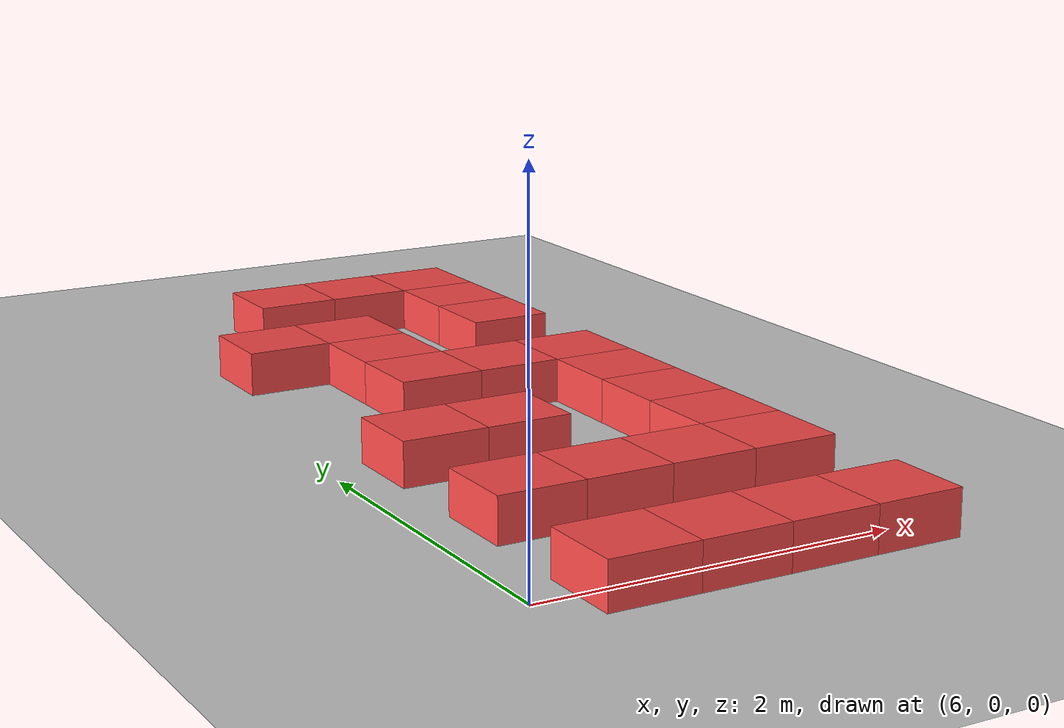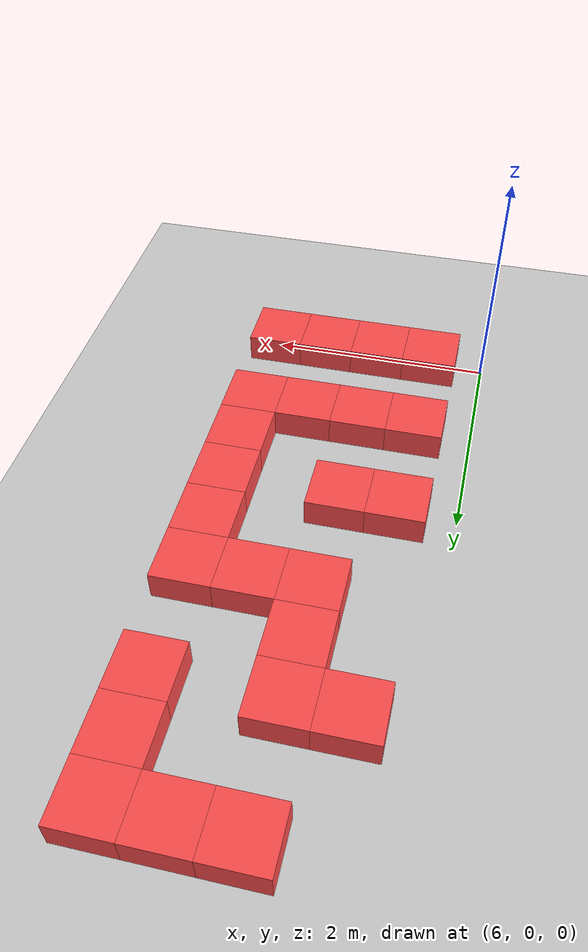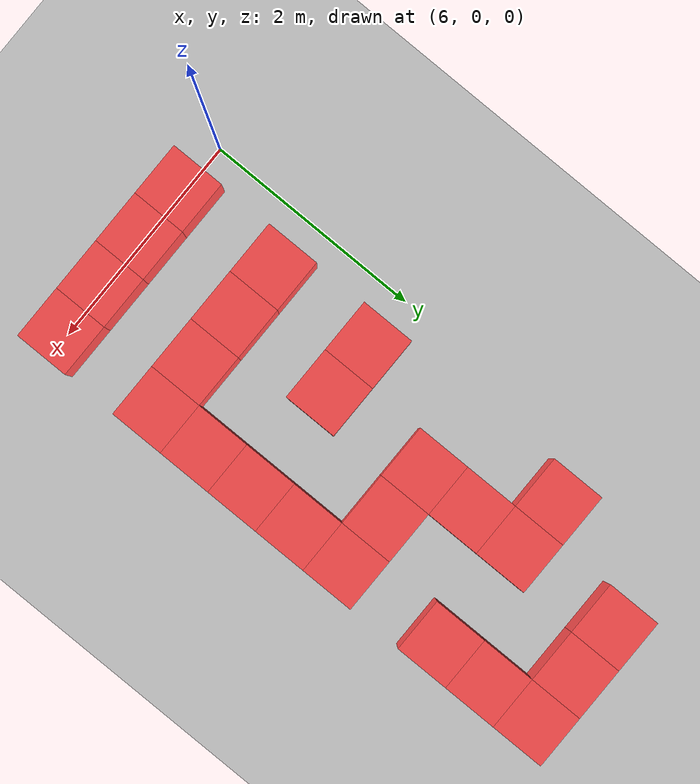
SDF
<sdf version="1.6">
 <world name="default">
  <model name="ground_plane">
   <static>1</static>
   <link name="link">
    <collision name="collision">
     <geometry><plane><normal>0 0 1</normal><size>100 100</size></plane></geometry>
     <surface><friction><ode><mu>100</mu><mu2>50</mu2></ode></friction></surface>
    </collision>
    <visual name="visual">
     <cast_shadows>0</cast_shadows>
     <geometry><plane><normal>0 0 1</normal><size>100 100</size></plane></geometry>
     <material>
      <script><uri>file://media/materials/scripts/gazebo.material</uri><name>Gazebo/Grey</name></script>
     </material>
    </visual>
   </link>
  </model>
  <model name="Box_Red_325">
   <link name="link_0">
    <inertial>
     <mass>1</mass>
     <inertia>
      <ixx>0.166667</ixx>
      <ixy>0</ixy>
      <ixz>0</ixz>
      <iyy>0.166667</iyy>
      <iyz>0</iyz>
      <izz>0.166667</izz>
     </inertia>
    </inertial>
    <visual name="visual">
     <geometry><box><size>0.5 0.5 0.5</size></box></geometry>
     <material>
      <lighting>1</lighting>
      <script><uri>file://media/materials/scripts/gazebo.material</uri><name>Gazebo/Grey</name></script>
      <ambient>1 0.3 0.3 1</ambient>
      <diffuse>0.7 0.7 0.7 1</diffuse>
      <specular>0.01 0.01 0.01 1</specular>
      <emissive>0 0 0 1</emissive>
      <shader type="vertex"><normal_map>__default__</normal_map></shader>
     </material>
    </visual>
    <collision name="collision">
     <geometry><box><size>0.5 0.5 0.5</size></box></geometry>
     <surface>
      <friction>
       <ode><mu>1</mu><mu2>1</mu2><fdir1>0 0 0</fdir1><slip1>0</slip1><slip2>0</slip2></ode>
       <torsional>
        <coefficient>1</coefficient>
        <patch_radius>0</patch_radius>
        <surface_radius>0</surface_radius>
        <use_patch_radius>1</use_patch_radius>
        <ode><slip>0</slip></ode>
       </torsional>
      </friction>
      <bounce><restitution_coefficient>0</restitution_coefficient><threshold>1e+06</threshold></bounce>
      <contact>
       <collide_without_contact>0</collide_without_contact>
       <collide_without_contact_bitmask>1</collide_without_contact_bitmask>
       <collide_bitmask>1</collide_bitmask>
       <ode>
        <soft_cfm>0</soft_cfm>
        <soft_erp>0.2</soft_erp>
        <kp>1e+13</kp>
        <kd>1</kd>
        <max_vel>0.01</max_vel>
        <min_depth>0</min_depth>
       </ode>
       <bullet>
        <split_impulse>1</split_impulse>
        <split_impulse_penetration_threshold>-0.01</split_impulse_penetration_threshold>
        <soft_cfm>0</soft_cfm>
        <soft_erp>0.2</soft_erp>
        <kp>1e+13</kp>
        <kd>1</kd>
       </bullet>
      </contact>
     </surface>
    </collision>
   </link>
   <static>0</static>
   <pose>6.500 0.000 0.000 0 0 0</pose>
  </model>
  <model name="Box_Red_327">
   <link name="link_0">
    <inertial>
     <mass>1</mass>
     <inertia>
      <ixx>0.166667</ixx>
      <ixy>0</ixy>
      <ixz>0</ixz>
      <iyy>0.166667</iyy>
      <iyz>0</iyz>
      <izz>0.166667</izz>
     </inertia>
    </inertial>
    <visual name="visual">
     <geometry><box><size>0.5 0.5 0.5</size></box></geometry>
     <material>
      <lighting>1</lighting>
      <script><uri>file://media/materials/scripts/gazebo.material</uri><name>Gazebo/Grey</name></script>
      <ambient>1 0.3 0.3 1</ambient>
      <diffuse>0.7 0.7 0.7 1</diffuse>
      <specular>0.01 0.01 0.01 1</specular>
      <emissive>0 0 0 1</emissive>
      <shader type="vertex"><normal_map>__default__</normal_map></shader>
     </material>
    </visual>
    <collision name="collision">
     <geometry><box><size>0.5 0.5 0.5</size></box></geometry>
     <surface>
      <friction>
       <ode><mu>1</mu><mu2>1</mu2><fdir1>0 0 0</fdir1><slip1>0</slip1><slip2>0</slip2></ode>
       <torsional>
        <coefficient>1</coefficient>
        <patch_radius>0</patch_radius>
        <surface_radius>0</surface_radius>
        <use_patch_radius>1</use_patch_radius>
        <ode><slip>0</slip></ode>
       </torsional>
      </friction>
      <bounce><restitution_coefficient>0</restitution_coefficient><threshold>1e+06</threshold></bounce>
      <contact>
       <collide_without_contact>0</collide_without_contact>
       <collide_without_contact_bitmask>1</collide_without_contact_bitmask>
       <collide_bitmask>1</collide_bitmask>
       <ode>
        <soft_cfm>0</soft_cfm>
        <soft_erp>0.2</soft_erp>
        <kp>1e+13</kp>
        <kd>1</kd>
        <max_vel>0.01</max_vel>
        <min_depth>0</min_depth>
       </ode>
       <bullet>
        <split_impulse>1</split_impulse>
        <split_impulse_penetration_threshold>-0.01</split_impulse_penetration_threshold>
        <soft_cfm>0</soft_cfm>
        <soft_erp>0.2</soft_erp>
        <kp>1e+13</kp>
        <kd>1</kd>
       </bullet>
      </contact>
     </surface>
    </collision>
   </link>
   <static>0</static>
   <pose>6.500 1.000 0.000 0 0 0</pose>
  </model>
  <model name="Box_Red_329">
   <link name="link_0">
    <inertial>
     <mass>1</mass>
     <inertia>
      <ixx>0.166667</ixx>
      <ixy>0</ixy>
      <ixz>0</ixz>
      <iyy>0.166667</iyy>
      <iyz>0</iyz>
      <izz>0.166667</izz>
     </inertia>
    </inertial>
    <visual name="visual">
     <geometry><box><size>0.5 0.5 0.5</size></box></geometry>
     <material>
      <lighting>1</lighting>
      <script><uri>file://media/materials/scripts/gazebo.material</uri><name>Gazebo/Grey</name></script>
      <ambient>1 0.3 0.3 1</ambient>
      <diffuse>0.7 0.7 0.7 1</diffuse>
      <specular>0.01 0.01 0.01 1</specular>
      <emissive>0 0 0 1</emissive>
      <shader type="vertex"><normal_map>__default__</normal_map></shader>
     </material>
    </visual>
    <collision name="collision">
     <geometry><box><size>0.5 0.5 0.5</size></box></geometry>
     <surface>
      <friction>
       <ode><mu>1</mu><mu2>1</mu2><fdir1>0 0 0</fdir1><slip1>0</slip1><slip2>0</slip2></ode>
       <torsional>
        <coefficient>1</coefficient>
        <patch_radius>0</patch_radius>
        <surface_radius>0</surface_radius>
        <use_patch_radius>1</use_patch_radius>
        <ode><slip>0</slip></ode>
       </torsional>
      </friction>
      <bounce><restitution_coefficient>0</restitution_coefficient><threshold>1e+06</threshold></bounce>
      <contact>
       <collide_without_contact>0</collide_without_contact>
       <collide_without_contact_bitmask>1</collide_without_contact_bitmask>
       <collide_bitmask>1</collide_bitmask>
       <ode>
        <soft_cfm>0</soft_cfm>
        <soft_erp>0.2</soft_erp>
        <kp>1e+13</kp>
        <kd>1</kd>
        <max_vel>0.01</max_vel>
        <min_depth>0</min_depth>
       </ode>
       <bullet>
        <split_impulse>1</split_impulse>
        <split_impulse_penetration_threshold>-0.01</split_impulse_penetration_threshold>
        <soft_cfm>0</soft_cfm>
        <soft_erp>0.2</soft_erp>
        <kp>1e+13</kp>
        <kd>1</kd>
       </bullet>
      </contact>
     </surface>
    </collision>
   </link>
   <static>0</static>
   <pose>6.500 2.000 0.000 0 0 0</pose>
  </model>
  <model name="Box_Red_333">
   <link name="link_0">
    <inertial>
     <mass>1</mass>
     <inertia>
      <ixx>0.166667</ixx>
      <ixy>0</ixy>
      <ixz>0</ixz>
      <iyy>0.166667</iyy>
      <iyz>0</iyz>
      <izz>0.166667</izz>
     </inertia>
    </inertial>
    <visual name="visual">
     <geometry><box><size>0.5 0.5 0.5</size></box></geometry>
     <material>
      <lighting>1</lighting>
      <script><uri>file://media/materials/scripts/gazebo.material</uri><name>Gazebo/Grey</name></script>
      <ambient>1 0.3 0.3 1</ambient>
      <diffuse>0.7 0.7 0.7 1</diffuse>
      <specular>0.01 0.01 0.01 1</specular>
      <emissive>0 0 0 1</emissive>
      <shader type="vertex"><normal_map>__default__</normal_map></shader>
     </material>
    </visual>
    <collision name="collision">
     <geometry><box><size>0.5 0.5 0.5</size></box></geometry>
     <surface>
      <friction>
       <ode><mu>1</mu><mu2>1</mu2><fdir1>0 0 0</fdir1><slip1>0</slip1><slip2>0</slip2></ode>
       <torsional>
        <coefficient>1</coefficient>
        <patch_radius>0</patch_radius>
        <surface_radius>0</surface_radius>
        <use_patch_radius>1</use_patch_radius>
        <ode><slip>0</slip></ode>
       </torsional>
      </friction>
      <bounce><restitution_coefficient>0</restitution_coefficient><threshold>1e+06</threshold></bounce>
      <contact>
       <collide_without_contact>0</collide_without_contact>
       <collide_without_contact_bitmask>1</collide_without_contact_bitmask>
       <collide_bitmask>1</collide_bitmask>
       <ode>
        <soft_cfm>0</soft_cfm>
        <soft_erp>0.2</soft_erp>
        <kp>1e+13</kp>
        <kd>1</kd>
        <max_vel>0.01</max_vel>
        <min_depth>0</min_depth>
       </ode>
       <bullet>
        <split_impulse>1</split_impulse>
        <split_impulse_penetration_threshold>-0.01</split_impulse_penetration_threshold>
        <soft_cfm>0</soft_cfm>
        <soft_erp>0.2</soft_erp>
        <kp>1e+13</kp>
        <kd>1</kd>
       </bullet>
      </contact>
     </surface>
    </collision>
   </link>
   <static>0</static>
   <pose>6.500 4.000 0.000 0 0 0</pose>
  </model>
  <model name="Box_Red_350">
   <link name="link_0">
    <inertial>
     <mass>1</mass>
     <inertia>
      <ixx>0.166667</ixx>
      <ixy>0</ixy>
      <ixz>0</ixz>
      <iyy>0.166667</iyy>
      <iyz>0</iyz>
      <izz>0.166667</izz>
     </inertia>
    </inertial>
    <visual name="visual">
     <geometry><box><size>0.5 0.5 0.5</size></box></geometry>
     <material>
      <lighting>1</lighting>
      <script><uri>file://media/materials/scripts/gazebo.material</uri><name>Gazebo/Grey</name></script>
      <ambient>1 0.3 0.3 1</ambient>
      <diffuse>0.7 0.7 0.7 1</diffuse>
      <specular>0.01 0.01 0.01 1</specular>
      <emissive>0 0 0 1</emissive>
      <shader type="vertex"><normal_map>__default__</normal_map></shader>
     </material>
    </visual>
    <collision name="collision">
     <geometry><box><size>0.5 0.5 0.5</size></box></geometry>
     <surface>
      <friction>
       <ode><mu>1</mu><mu2>1</mu2><fdir1>0 0 0</fdir1><slip1>0</slip1><slip2>0</slip2></ode>
       <torsional>
        <coefficient>1</coefficient>
        <patch_radius>0</patch_radius>
        <surface_radius>0</surface_radius>
        <use_patch_radius>1</use_patch_radius>
        <ode><slip>0</slip></ode>
       </torsional>
      </friction>
      <bounce><restitution_coefficient>0</restitution_coefficient><threshold>1e+06</threshold></bounce>
      <contact>
       <collide_without_contact>0</collide_without_contact>
       <collide_without_contact_bitmask>1</collide_without_contact_bitmask>
       <collide_bitmask>1</collide_bitmask>
       <ode>
        <soft_cfm>0</soft_cfm>
        <soft_erp>0.2</soft_erp>
        <kp>1e+13</kp>
        <kd>1</kd>
        <max_vel>0.01</max_vel>
        <min_depth>0</min_depth>
       </ode>
       <bullet>
        <split_impulse>1</split_impulse>
        <split_impulse_penetration_threshold>-0.01</split_impulse_penetration_threshold>
        <soft_cfm>0</soft_cfm>
        <soft_erp>0.2</soft_erp>
        <kp>1e+13</kp>
        <kd>1</kd>
       </bullet>
      </contact>
     </surface>
    </collision>
   </link>
   <static>0</static>
   <pose>7.000 0.000 0.000 0 0 0</pose>
  </model>
  <model name="Box_Red_352">
   <link name="link_0">
    <inertial>
     <mass>1</mass>
     <inertia>
      <ixx>0.166667</ixx>
      <ixy>0</ixy>
      <ixz>0</ixz>
      <iyy>0.166667</iyy>
      <iyz>0</iyz>
      <izz>0.166667</izz>
     </inertia>
    </inertial>
    <visual name="visual">
     <geometry><box><size>0.5 0.5 0.5</size></box></geometry>
     <material>
      <lighting>1</lighting>
      <script><uri>file://media/materials/scripts/gazebo.material</uri><name>Gazebo/Grey</name></script>
      <ambient>1 0.3 0.3 1</ambient>
      <diffuse>0.7 0.7 0.7 1</diffuse>
      <specular>0.01 0.01 0.01 1</specular>
      <emissive>0 0 0 1</emissive>
      <shader type="vertex"><normal_map>__default__</normal_map></shader>
     </material>
    </visual>
    <collision name="collision">
     <geometry><box><size>0.5 0.5 0.5</size></box></geometry>
     <surface>
      <friction>
       <ode><mu>1</mu><mu2>1</mu2><fdir1>0 0 0</fdir1><slip1>0</slip1><slip2>0</slip2></ode>
       <torsional>
        <coefficient>1</coefficient>
        <patch_radius>0</patch_radius>
        <surface_radius>0</surface_radius>
        <use_patch_radius>1</use_patch_radius>
        <ode><slip>0</slip></ode>
       </torsional>
      </friction>
      <bounce><restitution_coefficient>0</restitution_coefficient><threshold>1e+06</threshold></bounce>
      <contact>
       <collide_without_contact>0</collide_without_contact>
       <collide_without_contact_bitmask>1</collide_without_contact_bitmask>
       <collide_bitmask>1</collide_bitmask>
       <ode>
        <soft_cfm>0</soft_cfm>
        <soft_erp>0.2</soft_erp>
        <kp>1e+13</kp>
        <kd>1</kd>
        <max_vel>0.01</max_vel>
        <min_depth>0</min_depth>
       </ode>
       <bullet>
        <split_impulse>1</split_impulse>
        <split_impulse_penetration_threshold>-0.01</split_impulse_penetration_threshold>
        <soft_cfm>0</soft_cfm>
        <soft_erp>0.2</soft_erp>
        <kp>1e+13</kp>
        <kd>1</kd>
       </bullet>
      </contact>
     </surface>
    </collision>
   </link>
   <static>0</static>
   <pose>7.000 1.000 0.000 0 0 0</pose>
  </model>
  <model name="Box_Red_354">
   <link name="link_0">
    <inertial>
     <mass>1</mass>
     <inertia>
      <ixx>0.166667</ixx>
      <ixy>0</ixy>
      <ixz>0</ixz>
      <iyy>0.166667</iyy>
      <iyz>0</iyz>
      <izz>0.166667</izz>
     </inertia>
    </inertial>
    <visual name="visual">
     <geometry><box><size>0.5 0.5 0.5</size></box></geometry>
     <material>
      <lighting>1</lighting>
      <script><uri>file://media/materials/scripts/gazebo.material</uri><name>Gazebo/Grey</name></script>
      <ambient>1 0.3 0.3 1</ambient>
      <diffuse>0.7 0.7 0.7 1</diffuse>
      <specular>0.01 0.01 0.01 1</specular>
      <emissive>0 0 0 1</emissive>
      <shader type="vertex"><normal_map>__default__</normal_map></shader>
     </material>
    </visual>
    <collision name="collision">
     <geometry><box><size>0.5 0.5 0.5</size></box></geometry>
     <surface>
      <friction>
       <ode><mu>1</mu><mu2>1</mu2><fdir1>0 0 0</fdir1><slip1>0</slip1><slip2>0</slip2></ode>
       <torsional>
        <coefficient>1</coefficient>
        <patch_radius>0</patch_radius>
        <surface_radius>0</surface_radius>
        <use_patch_radius>1</use_patch_radius>
        <ode><slip>0</slip></ode>
       </torsional>
      </friction>
      <bounce><restitution_coefficient>0</restitution_coefficient><threshold>1e+06</threshold></bounce>
      <contact>
       <collide_without_contact>0</collide_without_contact>
       <collide_without_contact_bitmask>1</collide_without_contact_bitmask>
       <collide_bitmask>1</collide_bitmask>
       <ode>
        <soft_cfm>0</soft_cfm>
        <soft_erp>0.2</soft_erp>
        <kp>1e+13</kp>
        <kd>1</kd>
        <max_vel>0.01</max_vel>
        <min_depth>0</min_depth>
       </ode>
       <bullet>
        <split_impulse>1</split_impulse>
        <split_impulse_penetration_threshold>-0.01</split_impulse_penetration_threshold>
        <soft_cfm>0</soft_cfm>
        <soft_erp>0.2</soft_erp>
        <kp>1e+13</kp>
        <kd>1</kd>
       </bullet>
      </contact>
     </surface>
    </collision>
   </link>
   <static>0</static>
   <pose>7.000 2.000 0.000 0 0 0</pose>
  </model>
  <model name="Box_Red_356">
   <link name="link_0">
    <inertial>
     <mass>1</mass>
     <inertia>
      <ixx>0.166667</ixx>
      <ixy>0</ixy>
      <ixz>0</ixz>
      <iyy>0.166667</iyy>
      <iyz>0</iyz>
      <izz>0.166667</izz>
     </inertia>
    </inertial>
    <visual name="visual">
     <geometry><box><size>0.5 0.5 0.5</size></box></geometry>
     <material>
      <lighting>1</lighting>
      <script><uri>file://media/materials/scripts/gazebo.material</uri><name>Gazebo/Grey</name></script>
      <ambient>1 0.3 0.3 1</ambient>
      <diffuse>0.7 0.7 0.7 1</diffuse>
      <specular>0.01 0.01 0.01 1</specular>
      <emissive>0 0 0 1</emissive>
      <shader type="vertex"><normal_map>__default__</normal_map></shader>
     </material>
    </visual>
    <collision name="collision">
     <geometry><box><size>0.5 0.5 0.5</size></box></geometry>
     <surface>
      <friction>
       <ode><mu>1</mu><mu2>1</mu2><fdir1>0 0 0</fdir1><slip1>0</slip1><slip2>0</slip2></ode>
       <torsional>
        <coefficient>1</coefficient>
        <patch_radius>0</patch_radius>
        <surface_radius>0</surface_radius>
        <use_patch_radius>1</use_patch_radius>
        <ode><slip>0</slip></ode>
       </torsional>
      </friction>
      <bounce><restitution_coefficient>0</restitution_coefficient><threshold>1e+06</threshold></bounce>
      <contact>
       <collide_without_contact>0</collide_without_contact>
       <collide_without_contact_bitmask>1</collide_without_contact_bitmask>
       <collide_bitmask>1</collide_bitmask>
       <ode>
        <soft_cfm>0</soft_cfm>
        <soft_erp>0.2</soft_erp>
        <kp>1e+13</kp>
        <kd>1</kd>
        <max_vel>0.01</max_vel>
        <min_depth>0</min_depth>
       </ode>
       <bullet>
        <split_impulse>1</split_impulse>
        <split_impulse_penetration_threshold>-0.01</split_impulse_penetration_threshold>
        <soft_cfm>0</soft_cfm>
        <soft_erp>0.2</soft_erp>
        <kp>1e+13</kp>
        <kd>1</kd>
       </bullet>
      </contact>
     </surface>
    </collision>
   </link>
   <static>0</static>
   <pose>7.000 3.000 0.000 0 0 0</pose>
  </model>
  <model name="Box_Red_357">
   <link name="link_0">
    <inertial>
     <mass>1</mass>
     <inertia>
      <ixx>0.166667</ixx>
      <ixy>0</ixy>
      <ixz>0</ixz>
      <iyy>0.166667</iyy>
      <iyz>0</iyz>
      <izz>0.166667</izz>
     </inertia>
    </inertial>
    <visual name="visual">
     <geometry><box><size>0.5 0.5 0.5</size></box></geometry>
     <material>
      <lighting>1</lighting>
      <script><uri>file://media/materials/scripts/gazebo.material</uri><name>Gazebo/Grey</name></script>
      <ambient>1 0.3 0.3 1</ambient>
      <diffuse>0.7 0.7 0.7 1</diffuse>
      <specular>0.01 0.01 0.01 1</specular>
      <emissive>0 0 0 1</emissive>
      <shader type="vertex"><normal_map>__default__</normal_map></shader>
     </material>
    </visual>
    <collision name="collision">
     <geometry><box><size>0.5 0.5 0.5</size></box></geometry>
     <surface>
      <friction>
       <ode><mu>1</mu><mu2>1</mu2><fdir1>0 0 0</fdir1><slip1>0</slip1><slip2>0</slip2></ode>
       <torsional>
        <coefficient>1</coefficient>
        <patch_radius>0</patch_radius>
        <surface_radius>0</surface_radius>
        <use_patch_radius>1</use_patch_radius>
        <ode><slip>0</slip></ode>
       </torsional>
      </friction>
      <bounce><restitution_coefficient>0</restitution_coefficient><threshold>1e+06</threshold></bounce>
      <contact>
       <collide_without_contact>0</collide_without_contact>
       <collide_without_contact_bitmask>1</collide_without_contact_bitmask>
       <collide_bitmask>1</collide_bitmask>
       <ode>
        <soft_cfm>0</soft_cfm>
        <soft_erp>0.2</soft_erp>
        <kp>1e+13</kp>
        <kd>1</kd>
        <max_vel>0.01</max_vel>
        <min_depth>0</min_depth>
       </ode>
       <bullet>
        <split_impulse>1</split_impulse>
        <split_impulse_penetration_threshold>-0.01</split_impulse_penetration_threshold>
        <soft_cfm>0</soft_cfm>
        <soft_erp>0.2</soft_erp>
        <kp>1e+13</kp>
        <kd>1</kd>
       </bullet>
      </contact>
     </surface>
    </collision>
   </link>
   <static>0</static>
   <pose>7.000 3.500 0.000 0 0 0</pose>
  </model>
  <model name="Box_Red_358">
   <link name="link_0">
    <inertial>
     <mass>1</mass>
     <inertia>
      <ixx>0.166667</ixx>
      <ixy>0</ixy>
      <ixz>0</ixz>
      <iyy>0.166667</iyy>
      <iyz>0</iyz>
      <izz>0.166667</izz>
     </inertia>
    </inertial>
    <visual name="visual">
     <geometry><box><size>0.5 0.5 0.5</size></box></geometry>
     <material>
      <lighting>1</lighting>
      <script><uri>file://media/materials/scripts/gazebo.material</uri><name>Gazebo/Grey</name></script>
      <ambient>1 0.3 0.3 1</ambient>
      <diffuse>0.7 0.7 0.7 1</diffuse>
      <specular>0.01 0.01 0.01 1</specular>
      <emissive>0 0 0 1</emissive>
      <shader type="vertex"><normal_map>__default__</normal_map></shader>
     </material>
    </visual>
    <collision name="collision">
     <geometry><box><size>0.5 0.5 0.5</size></box></geometry>
     <surface>
      <friction>
       <ode><mu>1</mu><mu2>1</mu2><fdir1>0 0 0</fdir1><slip1>0</slip1><slip2>0</slip2></ode>
       <torsional>
        <coefficient>1</coefficient>
        <patch_radius>0</patch_radius>
        <surface_radius>0</surface_radius>
        <use_patch_radius>1</use_patch_radius>
        <ode><slip>0</slip></ode>
       </torsional>
      </friction>
      <bounce><restitution_coefficient>0</restitution_coefficient><threshold>1e+06</threshold></bounce>
      <contact>
       <collide_without_contact>0</collide_without_contact>
       <collide_without_contact_bitmask>1</collide_without_contact_bitmask>
       <collide_bitmask>1</collide_bitmask>
       <ode>
        <soft_cfm>0</soft_cfm>
        <soft_erp>0.2</soft_erp>
        <kp>1e+13</kp>
        <kd>1</kd>
        <max_vel>0.01</max_vel>
        <min_depth>0</min_depth>
       </ode>
       <bullet>
        <split_impulse>1</split_impulse>
        <split_impulse_penetration_threshold>-0.01</split_impulse_penetration_threshold>
        <soft_cfm>0</soft_cfm>
        <soft_erp>0.2</soft_erp>
        <kp>1e+13</kp>
        <kd>1</kd>
       </bullet>
      </contact>
     </surface>
    </collision>
   </link>
   <static>0</static>
   <pose>7.000 4.000 0.000 0 0 0</pose>
  </model>
  <model name="Box_Red_360">
   <link name="link_0">
    <inertial>
     <mass>1</mass>
     <inertia>
      <ixx>0.166667</ixx>
      <ixy>0</ixy>
      <ixz>0</ixz>
      <iyy>0.166667</iyy>
      <iyz>0</iyz>
      <izz>0.166667</izz>
     </inertia>
    </inertial>
    <visual name="visual">
     <geometry><box><size>0.5 0.5 0.5</size></box></geometry>
     <material>
      <lighting>1</lighting>
      <script><uri>file://media/materials/scripts/gazebo.material</uri><name>Gazebo/Grey</name></script>
      <ambient>1 0.3 0.3 1</ambient>
      <diffuse>0.7 0.7 0.7 1</diffuse>
      <specular>0.01 0.01 0.01 1</specular>
      <emissive>0 0 0 1</emissive>
      <shader type="vertex"><normal_map>__default__</normal_map></shader>
     </material>
    </visual>
    <collision name="collision">
     <geometry><box><size>0.5 0.5 0.5</size></box></geometry>
     <surface>
      <friction>
       <ode><mu>1</mu><mu2>1</mu2><fdir1>0 0 0</fdir1><slip1>0</slip1><slip2>0</slip2></ode>
       <torsional>
        <coefficient>1</coefficient>
        <patch_radius>0</patch_radius>
        <surface_radius>0</surface_radius>
        <use_patch_radius>1</use_patch_radius>
        <ode><slip>0</slip></ode>
       </torsional>
      </friction>
      <bounce><restitution_coefficient>0</restitution_coefficient><threshold>1e+06</threshold></bounce>
      <contact>
       <collide_without_contact>0</collide_without_contact>
       <collide_without_contact_bitmask>1</collide_without_contact_bitmask>
       <collide_bitmask>1</collide_bitmask>
       <ode>
        <soft_cfm>0</soft_cfm>
        <soft_erp>0.2</soft_erp>
        <kp>1e+13</kp>
        <kd>1</kd>
        <max_vel>0.01</max_vel>
        <min_depth>0</min_depth>
       </ode>
       <bullet>
        <split_impulse>1</split_impulse>
        <split_impulse_penetration_threshold>-0.01</split_impulse_penetration_threshold>
        <soft_cfm>0</soft_cfm>
        <soft_erp>0.2</soft_erp>
        <kp>1e+13</kp>
        <kd>1</kd>
       </bullet>
      </contact>
     </surface>
    </collision>
   </link>
   <static>0</static>
   <pose>7.000 5.000 0.000 0 0 0</pose>
  </model>
  <model name="Box_Red_375">
   <link name="link_0">
    <inertial>
     <mass>1</mass>
     <inertia>
      <ixx>0.166667</ixx>
      <ixy>0</ixy>
      <ixz>0</ixz>
      <iyy>0.166667</iyy>
      <iyz>0</iyz>
      <izz>0.166667</izz>
     </inertia>
    </inertial>
    <visual name="visual">
     <geometry><box><size>0.5 0.5 0.5</size></box></geometry>
     <material>
      <lighting>1</lighting>
      <script><uri>file://media/materials/scripts/gazebo.material</uri><name>Gazebo/Grey</name></script>
      <ambient>1 0.3 0.3 1</ambient>
      <diffuse>0.7 0.7 0.7 1</diffuse>
      <specular>0.01 0.01 0.01 1</specular>
      <emissive>0 0 0 1</emissive>
      <shader type="vertex"><normal_map>__default__</normal_map></shader>
     </material>
    </visual>
    <collision name="collision">
     <geometry><box><size>0.5 0.5 0.5</size></box></geometry>
     <surface>
      <friction>
       <ode><mu>1</mu><mu2>1</mu2><fdir1>0 0 0</fdir1><slip1>0</slip1><slip2>0</slip2></ode>
       <torsional>
        <coefficient>1</coefficient>
        <patch_radius>0</patch_radius>
        <surface_radius>0</surface_radius>
        <use_patch_radius>1</use_patch_radius>
        <ode><slip>0</slip></ode>
       </torsional>
      </friction>
      <bounce><restitution_coefficient>0</restitution_coefficient><threshold>1e+06</threshold></bounce>
      <contact>
       <collide_without_contact>0</collide_without_contact>
       <collide_without_contact_bitmask>1</collide_without_contact_bitmask>
       <collide_bitmask>1</collide_bitmask>
       <ode>
        <soft_cfm>0</soft_cfm>
        <soft_erp>0.2</soft_erp>
        <kp>1e+13</kp>
        <kd>1</kd>
        <max_vel>0.01</max_vel>
        <min_depth>0</min_depth>
       </ode>
       <bullet>
        <split_impulse>1</split_impulse>
        <split_impulse_penetration_threshold>-0.01</split_impulse_penetration_threshold>
        <soft_cfm>0</soft_cfm>
        <soft_erp>0.2</soft_erp>
        <kp>1e+13</kp>
        <kd>1</kd>
       </bullet>
      </contact>
     </surface>
    </collision>
   </link>
   <static>0</static>
   <pose>7.500 0.000 0.000 0 0 0</pose>
  </model>
  <model name="Box_Red_377">
   <link name="link_0">
    <inertial>
     <mass>1</mass>
     <inertia>
      <ixx>0.166667</ixx>
      <ixy>0</ixy>
      <ixz>0</ixz>
      <iyy>0.166667</iyy>
      <iyz>0</iyz>
      <izz>0.166667</izz>
     </inertia>
    </inertial>
    <visual name="visual">
     <geometry><box><size>0.5 0.5 0.5</size></box></geometry>
     <material>
      <lighting>1</lighting>
      <script><uri>file://media/materials/scripts/gazebo.material</uri><name>Gazebo/Grey</name></script>
      <ambient>1 0.3 0.3 1</ambient>
      <diffuse>0.7 0.7 0.7 1</diffuse>
      <specular>0.01 0.01 0.01 1</specular>
      <emissive>0 0 0 1</emissive>
      <shader type="vertex"><normal_map>__default__</normal_map></shader>
     </material>
    </visual>
    <collision name="collision">
     <geometry><box><size>0.5 0.5 0.5</size></box></geometry>
     <surface>
      <friction>
       <ode><mu>1</mu><mu2>1</mu2><fdir1>0 0 0</fdir1><slip1>0</slip1><slip2>0</slip2></ode>
       <torsional>
        <coefficient>1</coefficient>
        <patch_radius>0</patch_radius>
        <surface_radius>0</surface_radius>
        <use_patch_radius>1</use_patch_radius>
        <ode><slip>0</slip></ode>
       </torsional>
      </friction>
      <bounce><restitution_coefficient>0</restitution_coefficient><threshold>1e+06</threshold></bounce>
      <contact>
       <collide_without_contact>0</collide_without_contact>
       <collide_without_contact_bitmask>1</collide_without_contact_bitmask>
       <collide_bitmask>1</collide_bitmask>
       <ode>
        <soft_cfm>0</soft_cfm>
        <soft_erp>0.2</soft_erp>
        <kp>1e+13</kp>
        <kd>1</kd>
        <max_vel>0.01</max_vel>
        <min_depth>0</min_depth>
       </ode>
       <bullet>
        <split_impulse>1</split_impulse>
        <split_impulse_penetration_threshold>-0.01</split_impulse_penetration_threshold>
        <soft_cfm>0</soft_cfm>
        <soft_erp>0.2</soft_erp>
        <kp>1e+13</kp>
        <kd>1</kd>
       </bullet>
      </contact>
     </surface>
    </collision>
   </link>
   <static>0</static>
   <pose>7.500 1.000 0.000 0 0 0</pose>
  </model>
  <model name="Box_Red_381">
   <link name="link_0">
    <inertial>
     <mass>1</mass>
     <inertia>
      <ixx>0.166667</ixx>
      <ixy>0</ixy>
      <ixz>0</ixz>
      <iyy>0.166667</iyy>
      <iyz>0</iyz>
      <izz>0.166667</izz>
     </inertia>
    </inertial>
    <visual name="visual">
     <geometry><box><size>0.5 0.5 0.5</size></box></geometry>
     <material>
      <lighting>1</lighting>
      <script><uri>file://media/materials/scripts/gazebo.material</uri><name>Gazebo/Grey</name></script>
      <ambient>1 0.3 0.3 1</ambient>
      <diffuse>0.7 0.7 0.7 1</diffuse>
      <specular>0.01 0.01 0.01 1</specular>
      <emissive>0 0 0 1</emissive>
      <shader type="vertex"><normal_map>__default__</normal_map></shader>
     </material>
    </visual>
    <collision name="collision">
     <geometry><box><size>0.5 0.5 0.5</size></box></geometry>
     <surface>
      <friction>
       <ode><mu>1</mu><mu2>1</mu2><fdir1>0 0 0</fdir1><slip1>0</slip1><slip2>0</slip2></ode>
       <torsional>
        <coefficient>1</coefficient>
        <patch_radius>0</patch_radius>
        <surface_radius>0</surface_radius>
        <use_patch_radius>1</use_patch_radius>
        <ode><slip>0</slip></ode>
       </torsional>
      </friction>
      <bounce><restitution_coefficient>0</restitution_coefficient><threshold>1e+06</threshold></bounce>
      <contact>
       <collide_without_contact>0</collide_without_contact>
       <collide_without_contact_bitmask>1</collide_without_contact_bitmask>
       <collide_bitmask>1</collide_bitmask>
       <ode>
        <soft_cfm>0</soft_cfm>
        <soft_erp>0.2</soft_erp>
        <kp>1e+13</kp>
        <kd>1</kd>
        <max_vel>0.01</max_vel>
        <min_depth>0</min_depth>
       </ode>
       <bullet>
        <split_impulse>1</split_impulse>
        <split_impulse_penetration_threshold>-0.01</split_impulse_penetration_threshold>
        <soft_cfm>0</soft_cfm>
        <soft_erp>0.2</soft_erp>
        <kp>1e+13</kp>
        <kd>1</kd>
       </bullet>
      </contact>
     </surface>
    </collision>
   </link>
   <static>0</static>
   <pose>7.500 3.000 0.000 0 0 0</pose>
  </model>
  <model name="Box_Red_385">
   <link name="link_0">
    <inertial>
     <mass>1</mass>
     <inertia>
      <ixx>0.166667</ixx>
      <ixy>0</ixy>
      <ixz>0</ixz>
      <iyy>0.166667</iyy>
      <iyz>0</iyz>
      <izz>0.166667</izz>
     </inertia>
    </inertial>
    <visual name="visual">
     <geometry><box><size>0.5 0.5 0.5</size></box></geometry>
     <material>
      <lighting>1</lighting>
      <script><uri>file://media/materials/scripts/gazebo.material</uri><name>Gazebo/Grey</name></script>
      <ambient>1 0.3 0.3 1</ambient>
      <diffuse>0.7 0.7 0.7 1</diffuse>
      <specular>0.01 0.01 0.01 1</specular>
      <emissive>0 0 0 1</emissive>
      <shader type="vertex"><normal_map>__default__</normal_map></shader>
     </material>
    </visual>
    <collision name="collision">
     <geometry><box><size>0.5 0.5 0.5</size></box></geometry>
     <surface>
      <friction>
       <ode><mu>1</mu><mu2>1</mu2><fdir1>0 0 0</fdir1><slip1>0</slip1><slip2>0</slip2></ode>
       <torsional>
        <coefficient>1</coefficient>
        <patch_radius>0</patch_radius>
        <surface_radius>0</surface_radius>
        <use_patch_radius>1</use_patch_radius>
        <ode><slip>0</slip></ode>
       </torsional>
      </friction>
      <bounce><restitution_coefficient>0</restitution_coefficient><threshold>1e+06</threshold></bounce>
      <contact>
       <collide_without_contact>0</collide_without_contact>
       <collide_without_contact_bitmask>1</collide_without_contact_bitmask>
       <collide_bitmask>1</collide_bitmask>
       <ode>
        <soft_cfm>0</soft_cfm>
        <soft_erp>0.2</soft_erp>
        <kp>1e+13</kp>
        <kd>1</kd>
        <max_vel>0.01</max_vel>
        <min_depth>0</min_depth>
       </ode>
       <bullet>
        <split_impulse>1</split_impulse>
        <split_impulse_penetration_threshold>-0.01</split_impulse_penetration_threshold>
        <soft_cfm>0</soft_cfm>
        <soft_erp>0.2</soft_erp>
        <kp>1e+13</kp>
        <kd>1</kd>
       </bullet>
      </contact>
     </surface>
    </collision>
   </link>
   <static>0</static>
   <pose>7.500 5.000 0.000 0 0 0</pose>
  </model>
  <model name="Box_Red_400">
   <link name="link_0">
    <inertial>
     <mass>1</mass>
     <inertia>
      <ixx>0.166667</ixx>
      <ixy>0</ixy>
      <ixz>0</ixz>
      <iyy>0.166667</iyy>
      <iyz>0</iyz>
      <izz>0.166667</izz>
     </inertia>
    </inertial>
    <visual name="visual">
     <geometry><box><size>0.5 0.5 0.5</size></box></geometry>
     <material>
      <lighting>1</lighting>
      <script><uri>file://media/materials/scripts/gazebo.material</uri><name>Gazebo/Grey</name></script>
      <ambient>1 0.3 0.3 1</ambient>
      <diffuse>0.7 0.7 0.7 1</diffuse>
      <specular>0.01 0.01 0.01 1</specular>
      <emissive>0 0 0 1</emissive>
      <shader type="vertex"><normal_map>__default__</normal_map></shader>
     </material>
    </visual>
    <collision name="collision">
     <geometry><box><size>0.5 0.5 0.5</size></box></geometry>
     <surface>
      <friction>
       <ode><mu>1</mu><mu2>1</mu2><fdir1>0 0 0</fdir1><slip1>0</slip1><slip2>0</slip2></ode>
       <torsional>
        <coefficient>1</coefficient>
        <patch_radius>0</patch_radius>
        <surface_radius>0</surface_radius>
        <use_patch_radius>1</use_patch_radius>
        <ode><slip>0</slip></ode>
       </torsional>
      </friction>
      <bounce><restitution_coefficient>0</restitution_coefficient><threshold>1e+06</threshold></bounce>
      <contact>
       <collide_without_contact>0</collide_without_contact>
       <collide_without_contact_bitmask>1</collide_without_contact_bitmask>
       <collide_bitmask>1</collide_bitmask>
       <ode>
        <soft_cfm>0</soft_cfm>
        <soft_erp>0.2</soft_erp>
        <kp>1e+13</kp>
        <kd>1</kd>
        <max_vel>0.01</max_vel>
        <min_depth>0</min_depth>
       </ode>
       <bullet>
        <split_impulse>1</split_impulse>
        <split_impulse_penetration_threshold>-0.01</split_impulse_penetration_threshold>
        <soft_cfm>0</soft_cfm>
        <soft_erp>0.2</soft_erp>
        <kp>1e+13</kp>
        <kd>1</kd>
       </bullet>
      </contact>
     </surface>
    </collision>
   </link>
   <static>0</static>
   <pose>8.000 0.000 0.000 0 0 0</pose>
  </model>
  <model name="Box_Red_402">
   <link name="link_0">
    <inertial>
     <mass>1</mass>
     <inertia>
      <ixx>0.166667</ixx>
      <ixy>0</ixy>
      <ixz>0</ixz>
      <iyy>0.166667</iyy>
      <iyz>0</iyz>
      <izz>0.166667</izz>
     </inertia>
    </inertial>
    <visual name="visual">
     <geometry><box><size>0.5 0.5 0.5</size></box></geometry>
     <material>
      <lighting>1</lighting>
      <script><uri>file://media/materials/scripts/gazebo.material</uri><name>Gazebo/Grey</name></script>
      <ambient>1 0.3 0.3 1</ambient>
      <diffuse>0.7 0.7 0.7 1</diffuse>
      <specular>0.01 0.01 0.01 1</specular>
      <emissive>0 0 0 1</emissive>
      <shader type="vertex"><normal_map>__default__</normal_map></shader>
     </material>
    </visual>
    <collision name="collision">
     <geometry><box><size>0.5 0.5 0.5</size></box></geometry>
     <surface>
      <friction>
       <ode><mu>1</mu><mu2>1</mu2><fdir1>0 0 0</fdir1><slip1>0</slip1><slip2>0</slip2></ode>
       <torsional>
        <coefficient>1</coefficient>
        <patch_radius>0</patch_radius>
        <surface_radius>0</surface_radius>
        <use_patch_radius>1</use_patch_radius>
        <ode><slip>0</slip></ode>
       </torsional>
      </friction>
      <bounce><restitution_coefficient>0</restitution_coefficient><threshold>1e+06</threshold></bounce>
      <contact>
       <collide_without_contact>0</collide_without_contact>
       <collide_without_contact_bitmask>1</collide_without_contact_bitmask>
       <collide_bitmask>1</collide_bitmask>
       <ode>
        <soft_cfm>0</soft_cfm>
        <soft_erp>0.2</soft_erp>
        <kp>1e+13</kp>
        <kd>1</kd>
        <max_vel>0.01</max_vel>
        <min_depth>0</min_depth>
       </ode>
       <bullet>
        <split_impulse>1</split_impulse>
        <split_impulse_penetration_threshold>-0.01</split_impulse_penetration_threshold>
        <soft_cfm>0</soft_cfm>
        <soft_erp>0.2</soft_erp>
        <kp>1e+13</kp>
        <kd>1</kd>
       </bullet>
      </contact>
     </surface>
    </collision>
   </link>
   <static>0</static>
   <pose>8.000 1.000 0.000 0 0 0</pose>
  </model>
  <model name="Box_Red_403">
   <link name="link_0">
    <inertial>
     <mass>1</mass>
     <inertia>
      <ixx>0.166667</ixx>
      <ixy>0</ixy>
      <ixz>0</ixz>
      <iyy>0.166667</iyy>
      <iyz>0</iyz>
      <izz>0.166667</izz>
     </inertia>
    </inertial>
    <visual name="visual">
     <geometry><box><size>0.5 0.5 0.5</size></box></geometry>
     <material>
      <lighting>1</lighting>
      <script><uri>file://media/materials/scripts/gazebo.material</uri><name>Gazebo/Grey</name></script>
      <ambient>1 0.3 0.3 1</ambient>
      <diffuse>0.7 0.7 0.7 1</diffuse>
      <specular>0.01 0.01 0.01 1</specular>
      <emissive>0 0 0 1</emissive>
      <shader type="vertex"><normal_map>__default__</normal_map></shader>
     </material>
    </visual>
    <collision name="collision">
     <geometry><box><size>0.5 0.5 0.5</size></box></geometry>
     <surface>
      <friction>
       <ode><mu>1</mu><mu2>1</mu2><fdir1>0 0 0</fdir1><slip1>0</slip1><slip2>0</slip2></ode>
       <torsional>
        <coefficient>1</coefficient>
        <patch_radius>0</patch_radius>
        <surface_radius>0</surface_radius>
        <use_patch_radius>1</use_patch_radius>
        <ode><slip>0</slip></ode>
       </torsional>
      </friction>
      <bounce><restitution_coefficient>0</restitution_coefficient><threshold>1e+06</threshold></bounce>
      <contact>
       <collide_without_contact>0</collide_without_contact>
       <collide_without_contact_bitmask>1</collide_without_contact_bitmask>
       <collide_bitmask>1</collide_bitmask>
       <ode>
        <soft_cfm>0</soft_cfm>
        <soft_erp>0.2</soft_erp>
        <kp>1e+13</kp>
        <kd>1</kd>
        <max_vel>0.01</max_vel>
        <min_depth>0</min_depth>
       </ode>
       <bullet>
        <split_impulse>1</split_impulse>
        <split_impulse_penetration_threshold>-0.01</split_impulse_penetration_threshold>
        <soft_cfm>0</soft_cfm>
        <soft_erp>0.2</soft_erp>
        <kp>1e+13</kp>
        <kd>1</kd>
       </bullet>
      </contact>
     </surface>
    </collision>
   </link>
   <static>0</static>
   <pose>8.000 1.500 0.000 0 0 0</pose>
  </model>
  <model name="Box_Red_404">
   <link name="link_0">
    <inertial>
     <mass>1</mass>
     <inertia>
      <ixx>0.166667</ixx>
      <ixy>0</ixy>
      <ixz>0</ixz>
      <iyy>0.166667</iyy>
      <iyz>0</iyz>
      <izz>0.166667</izz>
     </inertia>
    </inertial>
    <visual name="visual">
     <geometry><box><size>0.5 0.5 0.5</size></box></geometry>
     <material>
      <lighting>1</lighting>
      <script><uri>file://media/materials/scripts/gazebo.material</uri><name>Gazebo/Grey</name></script>
      <ambient>1 0.3 0.3 1</ambient>
      <diffuse>0.7 0.7 0.7 1</diffuse>
      <specular>0.01 0.01 0.01 1</specular>
      <emissive>0 0 0 1</emissive>
      <shader type="vertex"><normal_map>__default__</normal_map></shader>
     </material>
    </visual>
    <collision name="collision">
     <geometry><box><size>0.5 0.5 0.5</size></box></geometry>
     <surface>
      <friction>
       <ode><mu>1</mu><mu2>1</mu2><fdir1>0 0 0</fdir1><slip1>0</slip1><slip2>0</slip2></ode>
       <torsional>
        <coefficient>1</coefficient>
        <patch_radius>0</patch_radius>
        <surface_radius>0</surface_radius>
        <use_patch_radius>1</use_patch_radius>
        <ode><slip>0</slip></ode>
       </torsional>
      </friction>
      <bounce><restitution_coefficient>0</restitution_coefficient><threshold>1e+06</threshold></bounce>
      <contact>
       <collide_without_contact>0</collide_without_contact>
       <collide_without_contact_bitmask>1</collide_without_contact_bitmask>
       <collide_bitmask>1</collide_bitmask>
       <ode>
        <soft_cfm>0</soft_cfm>
        <soft_erp>0.2</soft_erp>
        <kp>1e+13</kp>
        <kd>1</kd>
        <max_vel>0.01</max_vel>
        <min_depth>0</min_depth>
       </ode>
       <bullet>
        <split_impulse>1</split_impulse>
        <split_impulse_penetration_threshold>-0.01</split_impulse_penetration_threshold>
        <soft_cfm>0</soft_cfm>
        <soft_erp>0.2</soft_erp>
        <kp>1e+13</kp>
        <kd>1</kd>
       </bullet>
      </contact>
     </surface>
    </collision>
   </link>
   <static>0</static>
   <pose>8.000 2.000 0.000 0 0 0</pose>
  </model>
  <model name="Box_Red_405">
   <link name="link_0">
    <inertial>
     <mass>1</mass>
     <inertia>
      <ixx>0.166667</ixx>
      <ixy>0</ixy>
      <ixz>0</ixz>
      <iyy>0.166667</iyy>
      <iyz>0</iyz>
      <izz>0.166667</izz>
     </inertia>
    </inertial>
    <visual name="visual">
     <geometry><box><size>0.5 0.5 0.5</size></box></geometry>
     <material>
      <lighting>1</lighting>
      <script><uri>file://media/materials/scripts/gazebo.material</uri><name>Gazebo/Grey</name></script>
      <ambient>1 0.3 0.3 1</ambient>
      <diffuse>0.7 0.7 0.7 1</diffuse>
      <specular>0.01 0.01 0.01 1</specular>
      <emissive>0 0 0 1</emissive>
      <shader type="vertex"><normal_map>__default__</normal_map></shader>
     </material>
    </visual>
    <collision name="collision">
     <geometry><box><size>0.5 0.5 0.5</size></box></geometry>
     <surface>
      <friction>
       <ode><mu>1</mu><mu2>1</mu2><fdir1>0 0 0</fdir1><slip1>0</slip1><slip2>0</slip2></ode>
       <torsional>
        <coefficient>1</coefficient>
        <patch_radius>0</patch_radius>
        <surface_radius>0</surface_radius>
        <use_patch_radius>1</use_patch_radius>
        <ode><slip>0</slip></ode>
       </torsional>
      </friction>
      <bounce><restitution_coefficient>0</restitution_coefficient><threshold>1e+06</threshold></bounce>
      <contact>
       <collide_without_contact>0</collide_without_contact>
       <collide_without_contact_bitmask>1</collide_without_contact_bitmask>
       <collide_bitmask>1</collide_bitmask>
       <ode>
        <soft_cfm>0</soft_cfm>
        <soft_erp>0.2</soft_erp>
        <kp>1e+13</kp>
        <kd>1</kd>
        <max_vel>0.01</max_vel>
        <min_depth>0</min_depth>
       </ode>
       <bullet>
        <split_impulse>1</split_impulse>
        <split_impulse_penetration_threshold>-0.01</split_impulse_penetration_threshold>
        <soft_cfm>0</soft_cfm>
        <soft_erp>0.2</soft_erp>
        <kp>1e+13</kp>
        <kd>1</kd>
       </bullet>
      </contact>
     </surface>
    </collision>
   </link>
   <static>0</static>
   <pose>8.000 2.500 0.000 0 0 0</pose>
  </model>
  <model name="Box_Red_406">
   <link name="link_0">
    <inertial>
     <mass>1</mass>
     <inertia>
      <ixx>0.166667</ixx>
      <ixy>0</ixy>
      <ixz>0</ixz>
      <iyy>0.166667</iyy>
      <iyz>0</iyz>
      <izz>0.166667</izz>
     </inertia>
    </inertial>
    <visual name="visual">
     <geometry><box><size>0.5 0.5 0.5</size></box></geometry>
     <material>
      <lighting>1</lighting>
      <script><uri>file://media/materials/scripts/gazebo.material</uri><name>Gazebo/Grey</name></script>
      <ambient>1 0.3 0.3 1</ambient>
      <diffuse>0.7 0.7 0.7 1</diffuse>
      <specular>0.01 0.01 0.01 1</specular>
      <emissive>0 0 0 1</emissive>
      <shader type="vertex"><normal_map>__default__</normal_map></shader>
     </material>
    </visual>
    <collision name="collision">
     <geometry><box><size>0.5 0.5 0.5</size></box></geometry>
     <surface>
      <friction>
       <ode><mu>1</mu><mu2>1</mu2><fdir1>0 0 0</fdir1><slip1>0</slip1><slip2>0</slip2></ode>
       <torsional>
        <coefficient>1</coefficient>
        <patch_radius>0</patch_radius>
        <surface_radius>0</surface_radius>
        <use_patch_radius>1</use_patch_radius>
        <ode><slip>0</slip></ode>
       </torsional>
      </friction>
      <bounce><restitution_coefficient>0</restitution_coefficient><threshold>1e+06</threshold></bounce>
      <contact>
       <collide_without_contact>0</collide_without_contact>
       <collide_without_contact_bitmask>1</collide_without_contact_bitmask>
       <collide_bitmask>1</collide_bitmask>
       <ode>
        <soft_cfm>0</soft_cfm>
        <soft_erp>0.2</soft_erp>
        <kp>1e+13</kp>
        <kd>1</kd>
        <max_vel>0.01</max_vel>
        <min_depth>0</min_depth>
       </ode>
       <bullet>
        <split_impulse>1</split_impulse>
        <split_impulse_penetration_threshold>-0.01</split_impulse_penetration_threshold>
        <soft_cfm>0</soft_cfm>
        <soft_erp>0.2</soft_erp>
        <kp>1e+13</kp>
        <kd>1</kd>
       </bullet>
      </contact>
     </surface>
    </collision>
   </link>
   <static>0</static>
   <pose>8.000 3.000 0.000 0 0 0</pose>
  </model>
  <model name="Box_Red_408">
   <link name="link_0">
    <inertial>
     <mass>1</mass>
     <inertia>
      <ixx>0.166667</ixx>
      <ixy>0</ixy>
      <ixz>0</ixz>
      <iyy>0.166667</iyy>
      <iyz>0</iyz>
      <izz>0.166667</izz>
     </inertia>
    </inertial>
    <visual name="visual">
     <geometry><box><size>0.5 0.5 0.5</size></box></geometry>
     <material>
      <lighting>1</lighting>
      <script><uri>file://media/materials/scripts/gazebo.material</uri><name>Gazebo/Grey</name></script>
      <ambient>1 0.3 0.3 1</ambient>
      <diffuse>0.7 0.7 0.7 1</diffuse>
      <specular>0.01 0.01 0.01 1</specular>
      <emissive>0 0 0 1</emissive>
      <shader type="vertex"><normal_map>__default__</normal_map></shader>
     </material>
    </visual>
    <collision name="collision">
     <geometry><box><size>0.5 0.5 0.5</size></box></geometry>
     <surface>
      <friction>
       <ode><mu>1</mu><mu2>1</mu2><fdir1>0 0 0</fdir1><slip1>0</slip1><slip2>0</slip2></ode>
       <torsional>
        <coefficient>1</coefficient>
        <patch_radius>0</patch_radius>
        <surface_radius>0</surface_radius>
        <use_patch_radius>1</use_patch_radius>
        <ode><slip>0</slip></ode>
       </torsional>
      </friction>
      <bounce><restitution_coefficient>0</restitution_coefficient><threshold>1e+06</threshold></bounce>
      <contact>
       <collide_without_contact>0</collide_without_contact>
       <collide_without_contact_bitmask>1</collide_without_contact_bitmask>
       <collide_bitmask>1</collide_bitmask>
       <ode>
        <soft_cfm>0</soft_cfm>
        <soft_erp>0.2</soft_erp>
        <kp>1e+13</kp>
        <kd>1</kd>
        <max_vel>0.01</max_vel>
        <min_depth>0</min_depth>
       </ode>
       <bullet>
        <split_impulse>1</split_impulse>
        <split_impulse_penetration_threshold>-0.01</split_impulse_penetration_threshold>
        <soft_cfm>0</soft_cfm>
        <soft_erp>0.2</soft_erp>
        <kp>1e+13</kp>
        <kd>1</kd>
       </bullet>
      </contact>
     </surface>
    </collision>
   </link>
   <static>0</static>
   <pose>8.000 4.000 0.000 0 0 0</pose>
  </model>
  <model name="Box_Red_409">
   <link name="link_0">
    <inertial>
     <mass>1</mass>
     <inertia>
      <ixx>0.166667</ixx>
      <ixy>0</ixy>
      <ixz>0</ixz>
      <iyy>0.166667</iyy>
      <iyz>0</iyz>
      <izz>0.166667</izz>
     </inertia>
    </inertial>
    <visual name="visual">
     <geometry><box><size>0.5 0.5 0.5</size></box></geometry>
     <material>
      <lighting>1</lighting>
      <script><uri>file://media/materials/scripts/gazebo.material</uri><name>Gazebo/Grey</name></script>
      <ambient>1 0.3 0.3 1</ambient>
      <diffuse>0.7 0.7 0.7 1</diffuse>
      <specular>0.01 0.01 0.01 1</specular>
      <emissive>0 0 0 1</emissive>
      <shader type="vertex"><normal_map>__default__</normal_map></shader>
     </material>
    </visual>
    <collision name="collision">
     <geometry><box><size>0.5 0.5 0.5</size></box></geometry>
     <surface>
      <friction>
       <ode><mu>1</mu><mu2>1</mu2><fdir1>0 0 0</fdir1><slip1>0</slip1><slip2>0</slip2></ode>
       <torsional>
        <coefficient>1</coefficient>
        <patch_radius>0</patch_radius>
        <surface_radius>0</surface_radius>
        <use_patch_radius>1</use_patch_radius>
        <ode><slip>0</slip></ode>
       </torsional>
      </friction>
      <bounce><restitution_coefficient>0</restitution_coefficient><threshold>1e+06</threshold></bounce>
      <contact>
       <collide_without_contact>0</collide_without_contact>
       <collide_without_contact_bitmask>1</collide_without_contact_bitmask>
       <collide_bitmask>1</collide_bitmask>
       <ode>
        <soft_cfm>0</soft_cfm>
        <soft_erp>0.2</soft_erp>
        <kp>1e+13</kp>
        <kd>1</kd>
        <max_vel>0.01</max_vel>
        <min_depth>0</min_depth>
       </ode>
       <bullet>
        <split_impulse>1</split_impulse>
        <split_impulse_penetration_threshold>-0.01</split_impulse_penetration_threshold>
        <soft_cfm>0</soft_cfm>
        <soft_erp>0.2</soft_erp>
        <kp>1e+13</kp>
        <kd>1</kd>
       </bullet>
      </contact>
     </surface>
    </collision>
   </link>
   <static>0</static>
   <pose>8.000 4.500 0.000 0 0 0</pose>
  </model>
  <model name="Box_Red_410">
   <link name="link_0">
    <inertial>
     <mass>1</mass>
     <inertia>
      <ixx>0.166667</ixx>
      <ixy>0</ixy>
      <ixz>0</ixz>
      <iyy>0.166667</iyy>
      <iyz>0</iyz>
      <izz>0.166667</izz>
     </inertia>
    </inertial>
    <visual name="visual">
     <geometry><box><size>0.5 0.5 0.5</size></box></geometry>
     <material>
      <lighting>1</lighting>
      <script><uri>file://media/materials/scripts/gazebo.material</uri><name>Gazebo/Grey</name></script>
      <ambient>1 0.3 0.3 1</ambient>
      <diffuse>0.7 0.7 0.7 1</diffuse>
      <specular>0.01 0.01 0.01 1</specular>
      <emissive>0 0 0 1</emissive>
      <shader type="vertex"><normal_map>__default__</normal_map></shader>
     </material>
    </visual>
    <collision name="collision">
     <geometry><box><size>0.5 0.5 0.5</size></box></geometry>
     <surface>
      <friction>
       <ode><mu>1</mu><mu2>1</mu2><fdir1>0 0 0</fdir1><slip1>0</slip1><slip2>0</slip2></ode>
       <torsional>
        <coefficient>1</coefficient>
        <patch_radius>0</patch_radius>
        <surface_radius>0</surface_radius>
        <use_patch_radius>1</use_patch_radius>
        <ode><slip>0</slip></ode>
       </torsional>
      </friction>
      <bounce><restitution_coefficient>0</restitution_coefficient><threshold>1e+06</threshold></bounce>
      <contact>
       <collide_without_contact>0</collide_without_contact>
       <collide_without_contact_bitmask>1</collide_without_contact_bitmask>
       <collide_bitmask>1</collide_bitmask>
       <ode>
        <soft_cfm>0</soft_cfm>
        <soft_erp>0.2</soft_erp>
        <kp>1e+13</kp>
        <kd>1</kd>
        <max_vel>0.01</max_vel>
        <min_depth>0</min_depth>
       </ode>
       <bullet>
        <split_impulse>1</split_impulse>
        <split_impulse_penetration_threshold>-0.01</split_impulse_penetration_threshold>
        <soft_cfm>0</soft_cfm>
        <soft_erp>0.2</soft_erp>
        <kp>1e+13</kp>
        <kd>1</kd>
       </bullet>
      </contact>
     </surface>
    </collision>
   </link>
   <static>0</static>
   <pose>8.000 5.000 0.000 0 0 0</pose>
  </model>
 </world>
</sdf>
